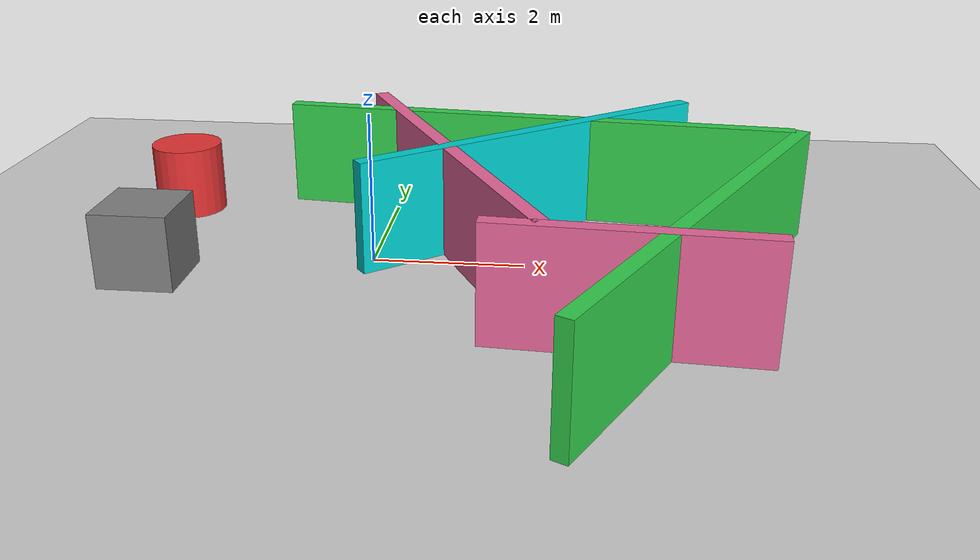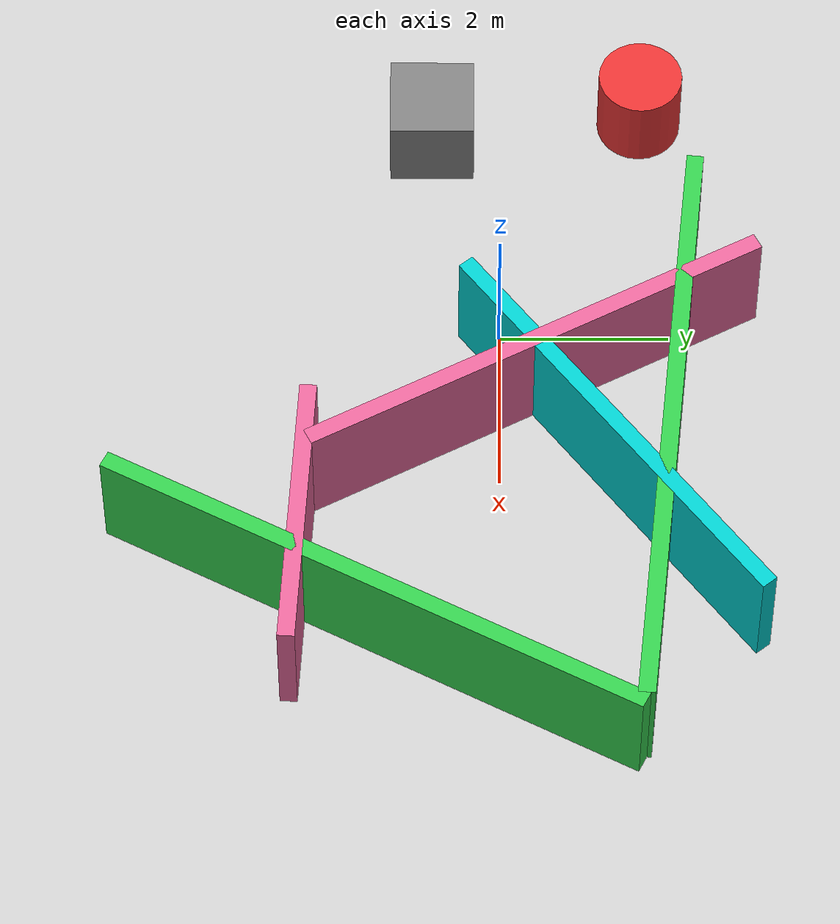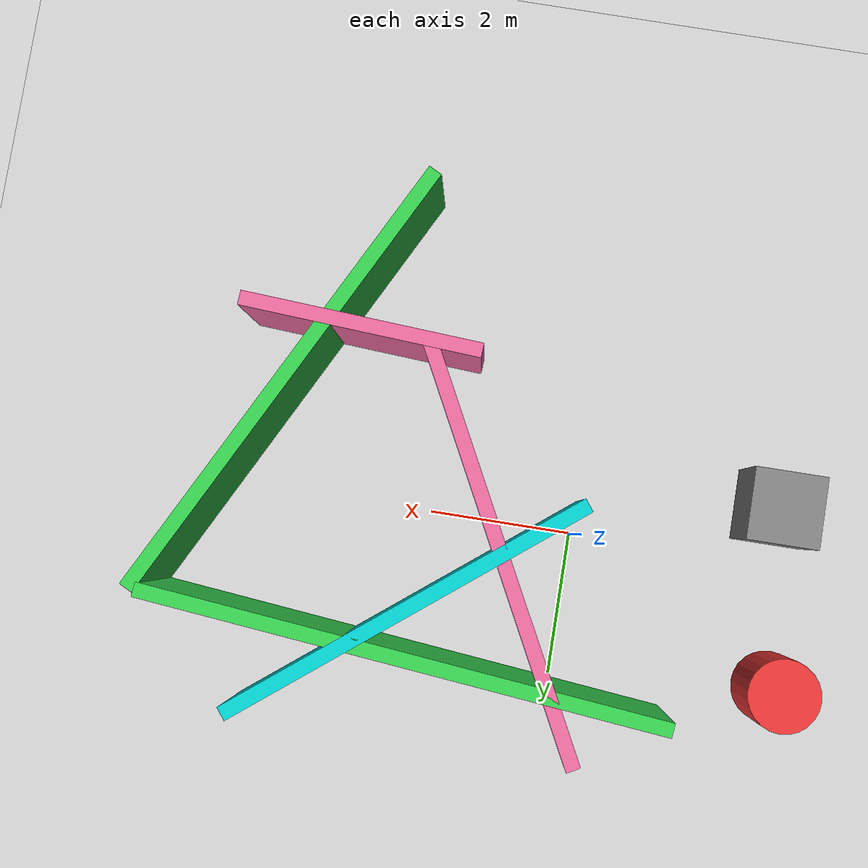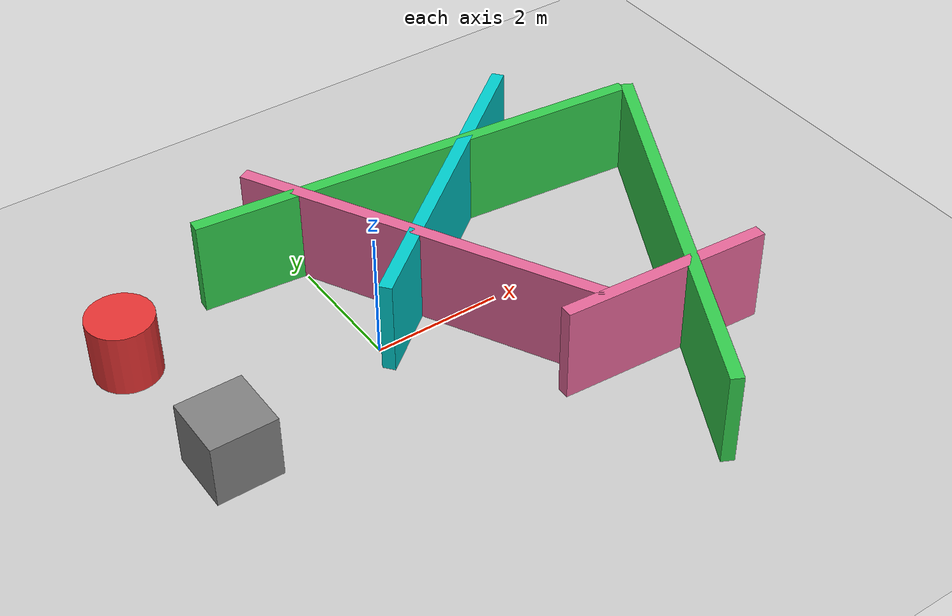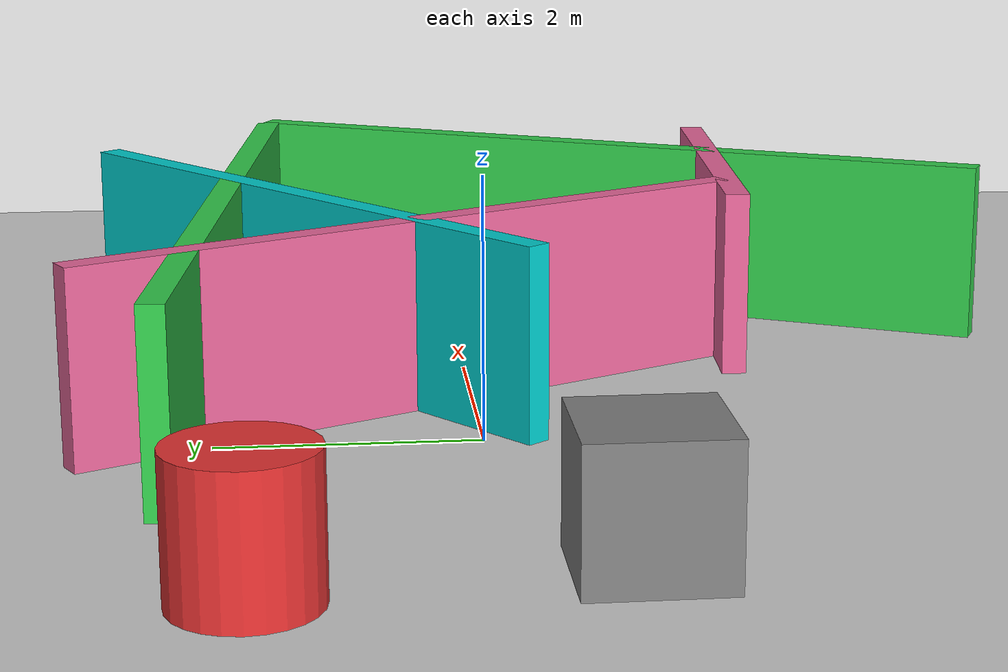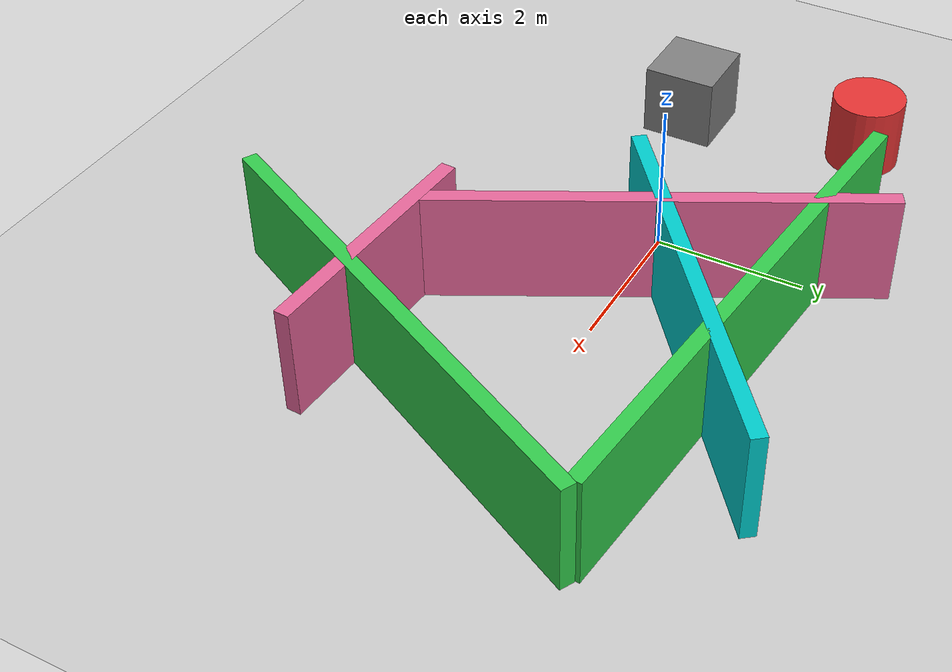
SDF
<?xml version='1.0' encoding='utf-8'?>
<sdf version="1.8">
  <world name="fgdg">
    <physics name="1ms" type="ode">
      <max_step_size>0.001</max_step_size>
      <real_time_factor>1</real_time_factor>
      <real_time_update_rate>1000</real_time_update_rate>
    </physics>
    <plugin name="ignition::gazebo::systems::Physics" filename="ignition-gazebo-physics-system" />
    <plugin name="ignition::gazebo::systems::UserCommands" filename="ignition-gazebo-user-commands-system" />
    <plugin name="ignition::gazebo::systems::SceneBroadcaster" filename="ignition-gazebo-scene-broadcaster-system" />
    <plugin name="ignition::gazebo::systems::Contact" filename="ignition-gazebo-contact-system" />
    <plugin name="ignition::gazebo::systems::Sensors" filename="ignition-gazebo-sensors-system">
      <render_engine>ogre2</render_engine>
    </plugin>
    <gravity>0 0 -9.8</gravity>
    <magnetic_field>6e-06 2.3e-05 -4.2e-05</magnetic_field>
    <atmosphere type="adiabatic" />
    <scene>
      <ambient>0.4 0.4 0.4 1</ambient>
      <background>0.7 0.7 0.7 1</background>
      <shadows>true</shadows>
    </scene>
    <model name="ground_plane">
      <static>true</static>
      <link name="link">
        <collision name="collision">
          <geometry>
            <plane>
              <normal>0 0 1</normal>
              <size>100 100</size>
            </plane>
          </geometry>
          <surface>
            <friction>
              <ode />
            </friction>
            <bounce />
            <contact />
          </surface>
        </collision>
        <visual name="visual">
          <geometry>
            <plane>
              <normal>0 0 1</normal>
              <size>100 100</size>
            </plane>
          </geometry>
          <material>
            <ambient>0.8 0.8 0.8 1</ambient>
            <diffuse>0.8 0.8 0.8 1</diffuse>
            <specular>0.8 0.8 0.8 1</specular>
          </material>
        </visual>
        <pose>0 0 0 0 0 0</pose>
        <inertial>
          <pose>0 0 0 0 0 0</pose>
          <mass>1</mass>
          <inertia>
            <ixx>1</ixx>
            <ixy>0</ixy>
            <ixz>0</ixz>
            <iyy>1</iyy>
            <iyz>0</iyz>
            <izz>1</izz>
          </inertia>
        </inertial>
        <enable_wind>false</enable_wind>
      </link>
      <pose>0 0 0 0 0 0</pose>
      <self_collide>false</self_collide>
    </model>
    <light name="sun" type="directional">
      <pose>0 0 10 0 0 0</pose>
      <cast_shadows>true</cast_shadows>
      <intensity>1</intensity>
      <direction>-0.5 0.1 -0.9</direction>
      <diffuse>0.8 0.8 0.8 1</diffuse>
      <specular>0.2 0.2 0.2 1</specular>
      <attenuation>
        <range>1000</range>
        <linear>0.01</linear>
        <constant>0.9</constant>
        <quadratic>0.001</quadratic>
      </attenuation>
      <spot>
        <inner_angle>0</inner_angle>
        <outer_angle>0</outer_angle>
        <falloff>0</falloff>
      </spot>
    </light>
  <model name="wall_1"><static>true</static><pose>2.000 1.950 0.750 0 0 -0.097</pose><link name="link"><collision name="collision"><geometry><box><size>7.234 0.200 1.500</size></box></geometry></collision><visual name="visual"><geometry><box><size>7.234 0.200 1.500</size></box></geometry><material><ambient>0.2 0.8 0.3 1</ambient><diffuse>0.2 0.8 0.3 1</diffuse></material></visual></link></model><model name="wall_2"><static>true</static><pose>4.150 -1.450 0.750 0 0 -2.041</pose><link name="link"><collision name="collision"><geometry><box><size>6.843 0.200 1.500</size></box></geometry></collision><visual name="visual"><geometry><box><size>6.843 0.200 1.500</size></box></geometry><material><ambient>0.2 0.8 0.3 1</ambient><diffuse>0.2 0.8 0.3 1</diffuse></material></visual></link></model><model name="wall_3"><static>true</static><pose>0.950 0.400 0.750 0 0 -1.092</pose><link name="link"><collision name="collision"><geometry><box><size>5.859 0.200 1.500</size></box></geometry></collision><visual name="visual"><geometry><box><size>5.859 0.200 1.500</size></box></geometry><material><ambient>0.9 0.4 0.6 1</ambient><diffuse>0.9 0.4 0.6 1</diffuse></material></visual></link></model><model name="wall_4"><static>true</static><pose>3.250 -2.300 0.750 0 0 3.081</pose><link name="link"><collision name="collision"><geometry><box><size>3.306 0.200 1.500</size></box></geometry></collision><visual name="visual"><geometry><box><size>3.306 0.200 1.500</size></box></geometry><material><ambient>0.9 0.4 0.6 1</ambient><diffuse>0.9 0.4 0.6 1</diffuse></material></visual></link></model><model name="wall_5"><static>true</static><pose>2.050 1.300 0.750 0 0 0.669</pose><link name="link"><collision name="collision"><geometry><box><size>5.482 0.200 1.500</size></box></geometry></collision><visual name="visual"><geometry><box><size>5.482 0.200 1.500</size></box></geometry><material><ambient>0.0 0.8 0.8 1</ambient><diffuse>0.0 0.8 0.8 1</diffuse></material></visual></link></model><model name="box_6"><static>true</static><pose>-2.800 -0.800 0.500 0 0 0</pose><link name="link"><collision name="collision"><geometry><box><size>1.000 1.000 1.000</size></box></geometry></collision><visual name="visual"><geometry><box><size>1.000 1.000 1.000</size></box></geometry><material><ambient>0.5 0.5 0.5 1</ambient><diffuse>0.5 0.5 0.5 1</diffuse></material></visual></link></model><model name="cylinder_7"><static>true</static><pose>-3.100 1.700 0.500 0 0 0</pose><link name="link"><collision name="collision"><geometry><cylinder><radius>0.500</radius><length>1.000</length></cylinder></geometry></collision><visual name="visual"><geometry><cylinder><radius>0.500</radius><length>1.000</length></cylinder></geometry><material><ambient>0.9 0.2 0.2 1</ambient><diffuse>0.9 0.2 0.2 1</diffuse></material></visual></link></model></world>
</sdf>
